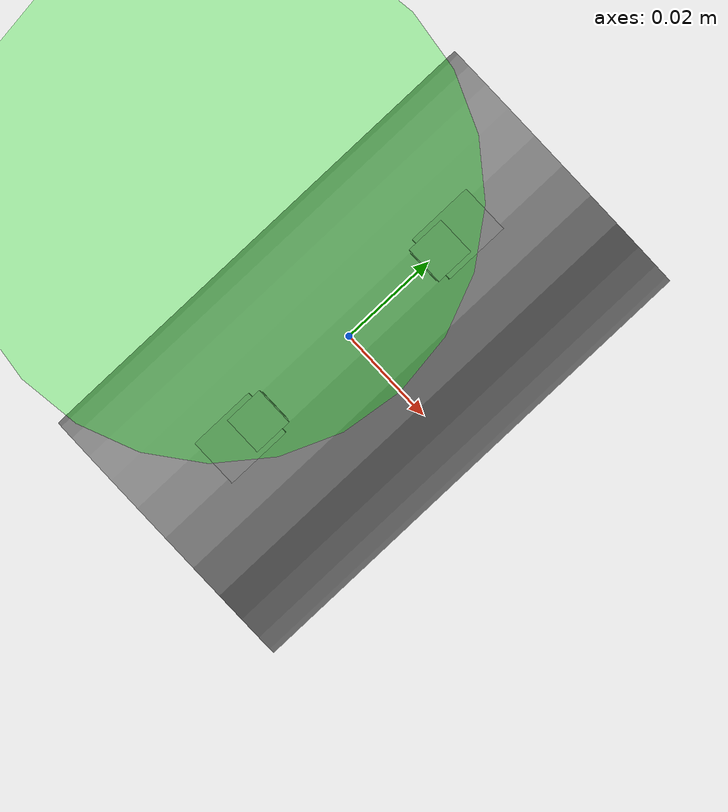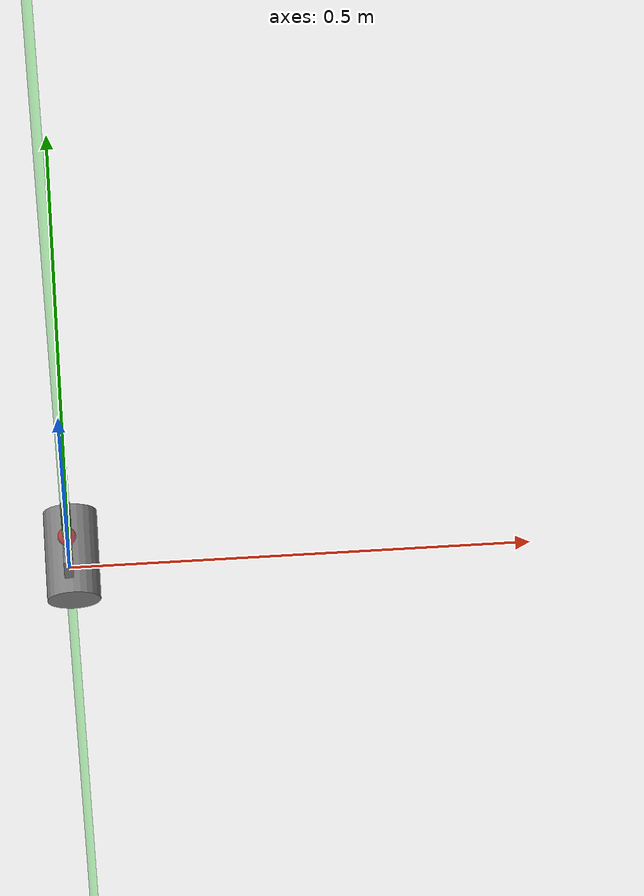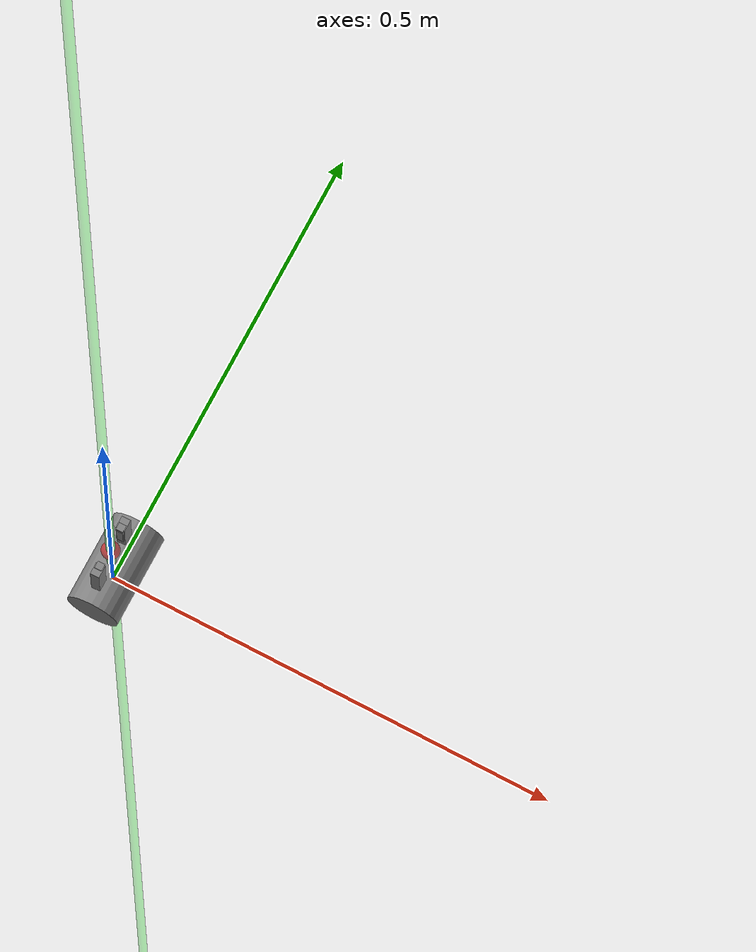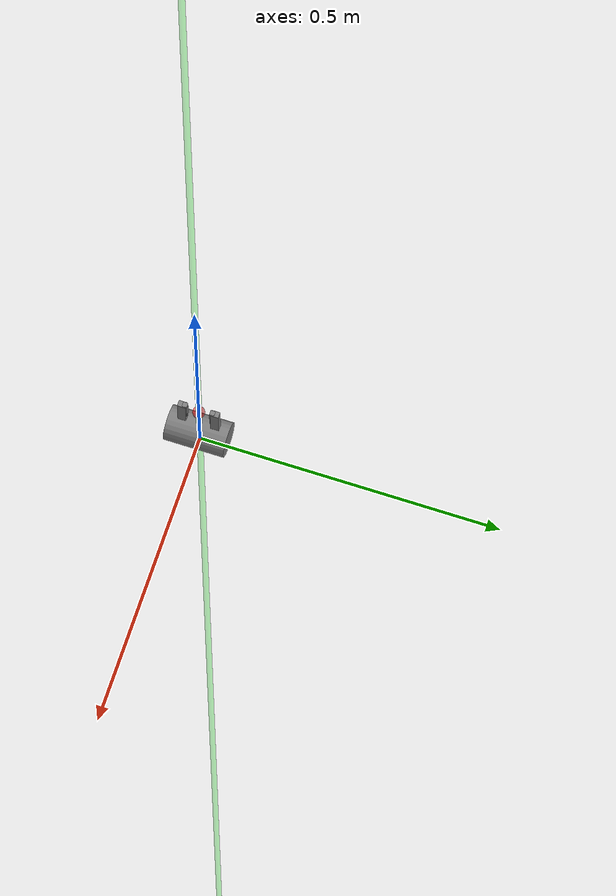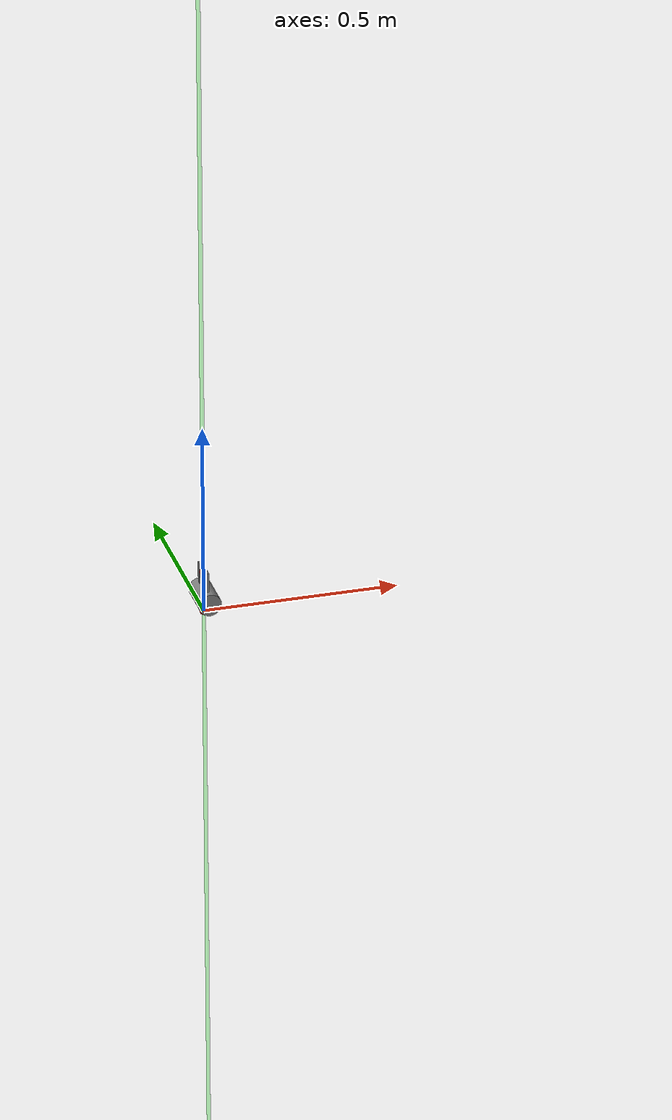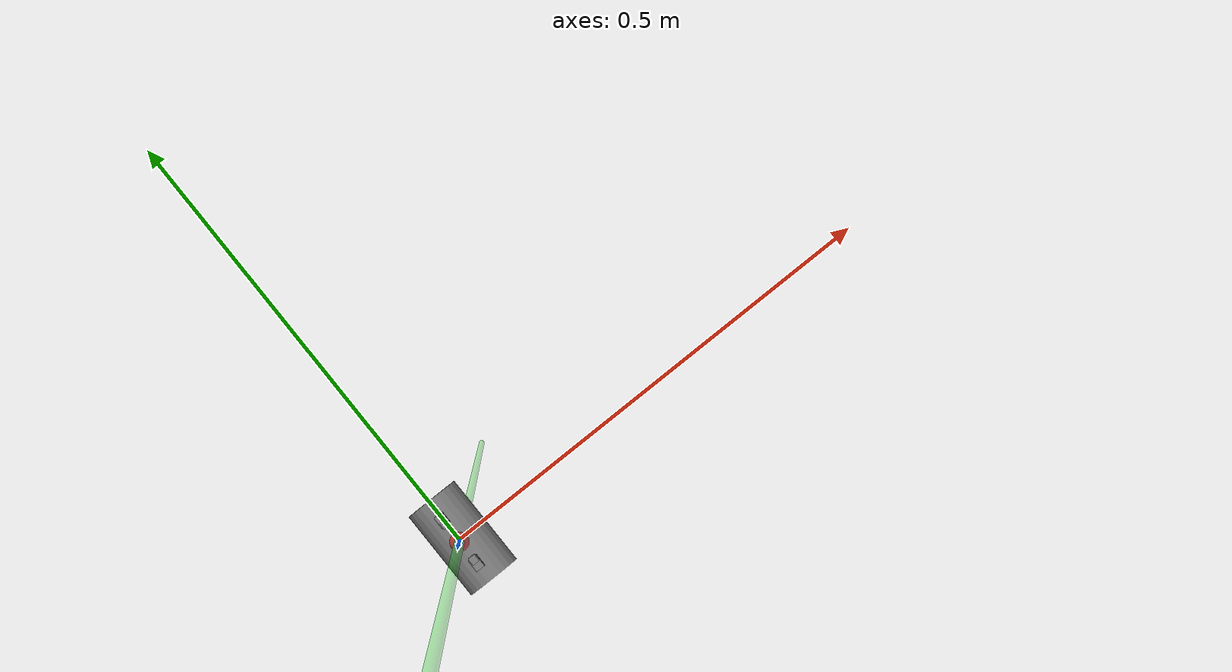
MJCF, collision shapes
<mujoco model="base">
    <asset>
        <mesh name="electric_gripper_base" file="meshes/rethink_gripper/electric_gripper_base.stl" />
        <mesh name="standard_narrow" file="meshes/rethink_gripper/standard_narrow.stl" />
        <mesh name="half_round_tip" file="meshes/rethink_gripper/half_round_tip.stl" />
        <mesh name="connector_plate" file="meshes/rethink_gripper/connector_plate.stl" />
    </asset>
    <actuator>
        <position ctrllimited="true" ctrlrange="-0.0115 0.020833" joint="r_finger_joint" kp="1000" name="gripper_r_finger_joint" forcelimited="true" forcerange="-20 20"/>
        <position ctrllimited="true" ctrlrange="-0.020833 0.0115" joint="l_finger_joint" kp="1000" name="gripper_l_finger_joint" forcelimited="true" forcerange="-20 20"/>
    </actuator>

    <worldbody>
        <body name="gripper_base" pos="0 0 0">
            <site name="ft_frame" pos="0 0 0" size="0.01 0.01 0.01" rgba="1 0 0 1" type="sphere" group="1"/>
            <inertial pos="0 0 0" quat="-0.5 0.5 0.5 0.5" mass="0.3" diaginertia="3e-08 2e-08 2e-08" />
            <geom type="mesh" contype="0" conaffinity="0" group="1" mesh="connector_plate" name="connector_plate" pos="0 0 0.0018" rgba="0.499 0.499 0.499 1"/>
            <geom type="mesh" contype="0" conaffinity="0" group="1" mesh="electric_gripper_base" name="electric_gripper_base" pos="0 0 0.0194" rgba="0.499 0.499 0.499 1"/>
            <geom size="0.029 0.05" quat="0 0 0.707107 0.707107" type="cylinder" group="0" name="gripper_base_col" pos="0.004 0.0 0.04"/>
            <!-- This site was added for visualization. -->
            <site name="grip_site" pos="0 0 0.109" size="0.01 0.01 0.01" rgba="1 0 0 0.5" type="sphere" group="1"/>
            <!-- This site was added for visualization. -->
            <site name="grip_site_cylinder" pos="0 0 0" size="0.005 10" rgba="0 1 0 0.3" type="cylinder" group="1"/>
            <body name="l_finger" pos="0 0.01 0.0444">
                <inertial pos="0 0 0" quat="0 0 0 -1" mass="0.02" diaginertia="0.01 0.01 0.01" />
                <joint name="l_finger_joint" pos="0 0 0" axis="0 1 0" type="slide" limited="true" range="-0.0115 0.020833" damping="100" armature="1.0" frictionloss="1.0"/>
                <geom name="l_finger" quat="0 0 0 -1" type="mesh" contype="0" conaffinity="0" group="1" mesh="standard_narrow" rgba="0.499 0.499 0.499 1"/>
                <geom size="0.005 0.00675 0.0375" pos="0 0.01725 0.04" quat="0 0 0 -1" type="box" group="0" conaffinity="1" contype="0" name="l_finger_g0" friction="0 0 0"/>
                <geom size="0.005 0.025 0.0085" pos="-0.005 -0.003 0.0083" quat="0 0 0 -1" type="box" group="0" conaffinity="1" contype="0" name="l_finger_g1" friction="0 0 0"/>
                <body name="l_finger_tip" pos="0 0.01725 0.075">
                    <inertial pos="0 0 0" quat="0 0 0 1" mass="0.01" diaginertia="0.01 0.01 0.01" />
                    <geom name="l_fingertip_g0_vis" quat="0 0 0 1" type="mesh" contype="0" conaffinity="0" group="1" mesh="half_round_tip" rgba="0.499 0.499 0.499 1"/>
                    <geom size="0.004 0.004 0.0185" pos="0 -0.0045 -0.015" quat="0 0 0 -1" type="box" group="0"  conaffinity="1" contype="0" name="l_fingertip_g0" friction="0 0 0"/>
                    <geom size="0.0035 0.004 0.0165" pos="0 -0.0047 -0.017" type="box"  conaffinity="1" contype="0" name="l_fingerpad_g0" friction="0 0 0"/>
                </body>
            </body>
            <body name="r_finger" pos="0 -0.01 0.0444">
                <inertial pos="0 0 0" mass="0.02" diaginertia="0.01 0.01 0.01" />
                <joint name="r_finger_joint" pos="0 0 0" axis="0 1 0" type="slide" limited="true" range="-0.020833 0.0115" damping="100" armature="1.0" frictionloss="1.0"/>
                <geom name="r_finger" type="mesh" contype="0" conaffinity="0" group="1" mesh="standard_narrow" rgba="0.499 0.499 0.499 1"/>
                <geom size="0.005 0.00675 0.0375" pos="0 -0.01725 0.04" type="box" group="0" conaffinity="1" contype="0" name="r_finger_g0" friction="0 0 0"/>
                <geom size="0.005 0.025 0.0085" pos="0.005 0.003 0.0083" type="box" group="0" conaffinity="1" contype="0" name="r_finger_g1" friction="0 0 0"/>
                <body name="r_finger_tip" pos="0 -0.01725 0.075">
                    <inertial pos="0 0 0" mass="0.01" diaginertia="0.01 0.01 0.01" />
                    <geom name="r_fingertip_g0_vis" type="mesh" contype="0" conaffinity="0" group="1" mesh="half_round_tip" rgba="0.499 0.499 0.499 1"/>
                    <geom size="0.004 0.004 0.0185" pos="0 0.0045 -0.015" type="box" group="0" conaffinity="1" contype="0" name="r_fingertip_g0" friction="0 0 0"/>
                    <geom size="0.0035 0.004 0.0165" pos="0 0.0047 -0.017" type="box"  conaffinity="1" contype="0" name="r_fingerpad_g0" friction="0 0 0"/>
                </body>
            </body>
        </body>
    </worldbody>
    <sensor>
        <force name="force_ee" site="ft_frame"/>
        <torque name="torque_ee" site="ft_frame"/>
    </sensor>
</mujoco>
